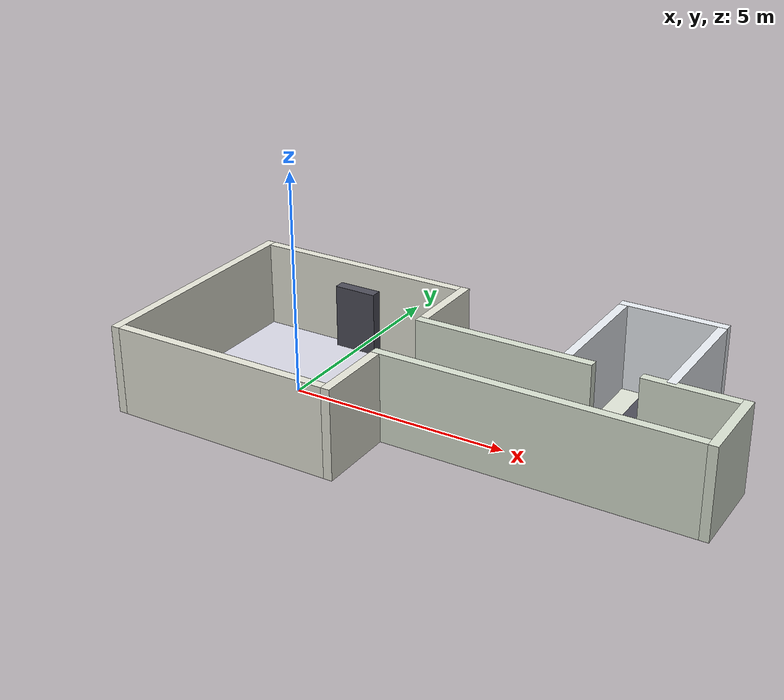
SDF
<?xml version="1.0" ?>
<sdf version="1.8">
  <world name="MechTech_to_MECE">

    <!-- Physics settings -->

      <!-- ODE-specific parameters for indoor robot simulation -->

    <!-- Physics settings -->
    <physics name="1ms" type="ignored">
      <max_step_size>0.005</max_step_size>
      <real_time_factor>1.0</real_time_factor>
    </physics>

    <!-- Essential Plugins - UNCOMMENTED -->
    <plugin
      filename="gz-sim-physics-system"
      name="gz::sim::systems::Physics">
    </plugin>

    <plugin
      filename="gz-sim-user-commands-system"
      name="gz::sim::systems::UserCommands">
    </plugin>

    <plugin
      filename="gz-sim-scene-broadcaster-system"
      name="gz::sim::systems::SceneBroadcaster">
    </plugin>

    <!-- Camera and LiDAR Plugins -->
    <plugin
      filename="gz-sim-sensors-system"
      name="gz::sim::systems::Sensors">
      <render_engine>ogre2</render_engine>
    </plugin>

    <!-- IMU plugin -->
    <plugin
      filename="gz-sim-imu-system"
      name="gz::sim::systems::Imu">
    </plugin>

    <!-- Enhanced Lighting -->
    <light type="directional" name="sun">
      <cast_shadows>true</cast_shadows>
      <pose>0 0 10 0 0 0</pose>
      <diffuse>0.8 0.8 0.8 1</diffuse>
      <specular>0.3 0.3 0.3 1</specular>
      <attenuation>
        <range>1000</range>
        <constant>0.9</constant>
        <linear>0.01</linear>
        <quadratic>0.001</quadratic>
      </attenuation>
      <direction>-0.5 0.1 -0.9</direction>
    </light>

    <light type="point" name="lobby_light">
      <pose>0 0 2.5 0 0 0</pose>
      <diffuse>0.7 0.7 0.8 1</diffuse>
      <specular>0.1 0.1 0.1 1</specular>
      <attenuation>
        <range>8</range>
        <constant>0.3</constant>
        <linear>0.05</linear>
        <quadratic>0.01</quadratic>
      </attenuation>
    </light>

    <light type="point" name="hallway_light">
      <pose>6 0 2.5 0 0 0</pose>
      <diffuse>0.7 0.7 0.8 1</diffuse>
      <specular>0.1 0.1 0.1 1</specular>
      <attenuation>
        <range>8</range>
        <constant>0.3</constant>
        <linear>0.05</linear>
        <quadratic>0.01</quadratic>
      </attenuation>
    </light>

    <light type="point" name="lab_light">
      <pose>7.0 2.25 2.5 0 0 0</pose>
      <diffuse>0.7 0.7 0.8 1</diffuse>
      <specular>0.1 0.1 0.1 1</specular>
      <attenuation>
        <range>8</range>
        <constant>0.3</constant>
        <linear>0.05</linear>
        <quadratic>0.01</quadratic>
      </attenuation>
    </light>
    <!-- ==================== LOBBY (5x5m) ==================== -->
    <model name="lobby_ground">
      <pose>0 0 0.01 0 0 0</pose>
      <static>true</static>
      <link name="link">
        <visual name="visual">
          <geometry>
            <box>
              <size>5.0 5.0 0.02</size>
            </box>
          </geometry>
          <material>
            <ambient>0.85 0.85 0.9 1</ambient>
            <diffuse>0.85 0.85 0.9 1</diffuse>
            <specular>0.3 0.3 0.3 1</specular>
          </material>
        </visual>
        <collision name="collision">
          <geometry>
            <box>
              <size>5.0 5.0 0.02</size>
            </box>
          </geometry>
        </collision>
      </link>
    </model>

    <model name="lobby_wall_north">
      <pose>0 2.6 1.0 0 0 0</pose>
      <static>true</static>
      <link name="link">
        <visual name="visual">
          <geometry>
            <box>
              <size>5.0 0.2 2.0</size>
            </box>
          </geometry>
          <material>
            <ambient>0.9 0.9 0.85 1</ambient>
            <diffuse>0.9 0.9 0.85 1</diffuse>
            <specular>0.1 0.1 0.1 1</specular>
          </material>
        </visual>
        <collision name="collision">
          <geometry>
            <box>
              <size>5.0 0.2 2.0</size>
            </box>
          </geometry>
        </collision>
      </link>
    </model>

    <model name="lobby_wall_south">
      <pose>0 -2.6 1.0 0 0 0</pose>
      <static>true</static>
      <link name="link">
        <visual name="visual">
          <geometry>
            <box>
              <size>5.0 0.2 2.0</size>
            </box>
          </geometry>
          <material>
            <ambient>0.9 0.9 0.85 1</ambient>
            <diffuse>0.9 0.9 0.85 1</diffuse>
            <specular>0.1 0.1 0.1 1</specular>
          </material>
        </visual>
        <collision name="collision">
          <geometry>
            <box>
              <size>5.0 0.2 2.0</size>
            </box>
          </geometry>
        </collision>
      </link>
    </model>

    <model name="lobby_wall_west">
      <pose>-2.6 0 1.0 0 0 0</pose>
      <static>true</static>
      <link name="link">
        <visual name="visual">
          <geometry>
            <box>
              <size>0.2 5.4 2.0</size>
            </box>
          </geometry>
          <material>
            <ambient>0.9 0.9 0.85 1</ambient>
            <diffuse>0.9 0.9 0.85 1</diffuse>
            <specular>0.1 0.1 0.1 1</specular>
          </material>
        </visual>
        <collision name="collision">
          <geometry>
            <box>
              <size>0.2 5.4 2.0</size>
            </box>
          </geometry>
        </collision>
      </link>
    </model>

    <model name="lobby_wall_northeast">
      <pose>2.6 1.825 1.0 0 0 0</pose>
      <static>true</static>
      <link name="link">
        <visual name="visual">
          <geometry>
            <box>
              <size>0.2 1.75 2.0</size>
            </box>
          </geometry>
          <material>
            <ambient>0.9 0.9 0.85 1</ambient>
            <diffuse>0.9 0.9 0.85 1</diffuse>
            <specular>0.1 0.1 0.1 1</specular>
          </material>
        </visual>
        <collision name="collision">
          <geometry>
            <box>
              <size>0.2 1.75 2.0</size>
            </box>
          </geometry>
        </collision>
      </link>
    </model>

    <model name="lobby_wall_southeast">
      <pose>2.6 -1.825 1.0 0 0 0</pose>
      <static>true</static>
      <link name="link">
        <visual name="visual">
          <geometry>
            <box>
              <size>0.2 1.75 2.0</size>
            </box>
          </geometry>
          <material>
            <ambient>0.9 0.9 0.85 1</ambient>
            <diffuse>0.9 0.9 0.85 1</diffuse>
            <specular>0.1 0.1 0.1 1</specular>
          </material>
        </visual>
        <collision name="collision">
          <geometry>
            <box>
              <size>0.2 1.75 2.0</size>
            </box>
          </geometry>
        </collision>
      </link>
    </model>

    <!-- ==================== HALLWAY ==================== -->
    <model name="hallway_ground">
      <pose>6.0 0 0.01 0 0 0</pose>
      <static>true</static>
      <link name="link">
        <visual name="visual">
          <geometry>
            <box>
              <size>7.0 1.5 0.02</size>
            </box>
          </geometry>
          <material>
            <ambient>0.8 0.82 0.85 1</ambient>
            <diffuse>0.8 0.82 0.85 1</diffuse>
            <specular>0.4 0.4 0.4 1</specular>
          </material>
        </visual>
        <collision name="collision">
          <geometry>
            <box>
              <size>7.0 1.5 0.02</size>
            </box>
          </geometry>
        </collision>
      </link>
    </model>

    <model name="hallway_wall_southwest">
      <pose>4.5 0.85 1.0 0 0 0</pose>
      <static>true</static>
      <link name="link">
        <visual name="visual">
          <geometry>
            <box>
              <size>4.0 0.2 2.0</size>
            </box>
          </geometry>
          <material>
            <ambient>0.85 0.88 0.82 1</ambient>
            <diffuse>0.85 0.88 0.82 1</diffuse>
            <specular>0.1 0.1 0.1 1</specular>
          </material>
        </visual>
        <collision name="collision">
          <geometry>
            <box>
              <size>4.0 0.2 2.0</size>
            </box>
          </geometry>
        </collision>
      </link>
    </model>

    <model name="hallway_wall_northwest">
      <pose>8.5 0.85 1.0 0 0 0</pose>
      <static>true</static>
      <link name="link">
        <visual name="visual">
          <geometry>
            <box>
              <size>2.0 0.2 2.0</size>
            </box>
          </geometry>
          <material>
            <ambient>0.85 0.88 0.82 1</ambient>
            <diffuse>0.85 0.88 0.82 1</diffuse>
            <specular>0.1 0.1 0.1 1</specular>
          </material>
        </visual>
        <collision name="collision">
          <geometry>
            <box>
              <size>2.0 0.2 2.0</size>
            </box>
          </geometry>
        </collision>
      </link>
    </model>

    <model name="hallway_wall_south">
      <pose>6.0 -0.85 1.0 0 0 0</pose>
      <static>true</static>
      <link name="link">
        <visual name="visual">
          <geometry>
            <box>
              <size>7.0 0.2 2.0</size>
            </box>
          </geometry>
          <material>
            <ambient>0.85 0.88 0.82 1</ambient>
            <diffuse>0.85 0.88 0.82 1</diffuse>
            <specular>0.1 0.1 0.1 1</specular>
          </material>
        </visual>
        <collision name="collision">
          <geometry>
            <box>
              <size>7.0 0.2 2.0</size>
            </box>
          </geometry>
        </collision>
      </link>
    </model>

    <model name="hallway_wall_east">
      <pose>9.6 0 1.0 0 0 0</pose>
      <static>true</static>
      <link name="link">
        <visual name="visual">
          <geometry>
            <box>
              <size>0.2 1.9 2.0</size>
            </box>
          </geometry>
          <material>
            <ambient>0.85 0.88 0.82 1</ambient>
            <diffuse>0.85 0.88 0.82 1</diffuse>
            <specular>0.1 0.1 0.1 1</specular>
          </material>
        </visual>
        <collision name="collision">
          <geometry>
            <box>
              <size>0.2 1.9 2.0</size>
            </box>
          </geometry>
        </collision>
      </link>
    </model>

    <!-- ==================== MechTech ==================== -->
    <model name="lab_ground">
      <pose>7.0 2.25 0.01 0 0 0</pose>
      <static>true</static>
      <link name="link">
        <visual name="visual">
          <geometry>
            <box>
              <size>2.0 3.0 0.02</size>
            </box>
          </geometry>
          <material>
            <ambient>0.88 0.9 0.85 1</ambient>
            <diffuse>0.88 0.9 0.85 1</diffuse>
            <specular>0.5 0.5 0.5 1</specular>
          </material>
        </visual>
        <collision name="collision">
          <geometry>
            <box>
              <size>2.0 3.0 0.02</size>
            </box>
          </geometry>
        </collision>
      </link>
    </model>

    <model name="lab_wall_north">
      <pose>7.0 3.75 1.0 0 0 0</pose>
      <static>true</static>
      <link name="link">
        <visual name="visual">
          <geometry>
            <box>
              <size>2.4 0.2 2.0</size>
            </box>
          </geometry>
          <material>
            <ambient>0.92 0.94 0.96 1</ambient>
            <diffuse>0.92 0.94 0.96 1</diffuse>
            <specular>0.2 0.2 0.2 1</specular>
          </material>
        </visual>
        <collision name="collision">
          <geometry>
            <box>
              <size>2.4 0.2 2.0</size>
            </box>
          </geometry>
        </collision>
      </link>
    </model>

    <model name="lab_wall_west">
      <pose>5.9 2.25 1.0 0 0 0</pose>
      <static>true</static>
      <link name="link">
        <visual name="visual">
          <geometry>
            <box>
              <size>0.2 2.8 2.0</size>
            </box>
          </geometry>
          <material>
            <ambient>0.92 0.94 0.96 1</ambient>
            <diffuse>0.92 0.94 0.96 1</diffuse>
            <specular>0.2 0.2 0.2 1</specular>
          </material>
        </visual>
        <collision name="collision">
          <geometry>
            <box>
              <size>0.2 2.8 2.0</size>
            </box>
          </geometry>
        </collision>
      </link>
    </model>

    <model name="lab_wall_east">
      <pose>8.1 2.25 1.0 0 0 0</pose>
      <static>true</static>
      <link name="link">
        <visual name="visual">
          <geometry>
            <box>
              <size>0.2 2.8 2.0</size>
            </box>
          </geometry>
          <material>
            <ambient>0.92 0.94 0.96 1</ambient>
            <diffuse>0.92 0.94 0.96 1</diffuse>
            <specular>0.2 0.2 0.2 1</specular>
          </material>
        </visual>
        <collision name="collision">
          <geometry>
            <box>
              <size>0.2 2.8 2.0</size>
            </box>
          </geometry>
        </collision>
      </link>
    </model>

    <model name="lab_table">
      <pose>7.0 2.25 0.2505 0 0 0</pose>
      <static>true</static>
      <link name="link">
        <visual name="visual">
          <geometry>
            <box>
              <size>0.4 1.2 0.5</size>
            </box>
          </geometry>
          <material>
            <ambient>0.3 0.3 0.35 1</ambient>
            <diffuse>0.3 0.3 0.35 1</diffuse>
            <specular>0.1 0.1 0.1 1</specular>
          </material>
        </visual>
        <collision name="collision">
          <geometry>
            <box>
             <size>0.4 1.2 0.5</size>
            </box>
          </geometry>
        </collision>
      </link>
    </model>

    <model name="table1">
      <pose>1.5 -1.75 0.25 0 0 0</pose>
      <static>true</static>
      <link name="link">
        <visual name="visual">
          <geometry>
            <cylinder>
              <radius>0.5</radius>
              <length>0.5</length>
            </cylinder>
          </geometry>
          <material>
            <ambient>0.3 0.3 0.35 1</ambient>
            <diffuse>0.3 0.3 0.35 1</diffuse>
            <specular>0.1 0.1 0.1 1</specular>
          </material>
        </visual>
        <collision name="collision">
          <geometry>
            <cylinder>
              <radius>0.5</radius>
              <length>0.5</length>
            </cylinder>
          </geometry>
        </collision>
      </link>
    </model>

    <model name="table2">
      <pose>0 -1.75 0.25 0 0 0</pose>
      <static>true</static>
      <link name="link">
        <visual name="visual">
          <geometry>
            <cylinder>
              <radius>0.5</radius>
              <length>0.5</length>
            </cylinder>
          </geometry>
          <material>
            <ambient>0.3 0.3 0.35 1</ambient>
            <diffuse>0.3 0.3 0.35 1</diffuse>
            <specular>0.1 0.1 0.1 1</specular>
          </material>
        </visual>
        <collision name="collision">
          <geometry>
            <cylinder>
              <radius>0.5</radius>
              <length>0.5</length>
            </cylinder>
          </geometry>
        </collision>
      </link>
    </model>

    <model name="table3">
      <pose>-1.5 -1.75 0.25 0 0 0</pose>
      <static>true</static>
      <link name="link">
        <visual name="visual">
          <geometry>
            <cylinder>
              <radius>0.5</radius>
              <length>0.5</length>
            </cylinder>
          </geometry>
          <material>
            <ambient>0.3 0.3 0.35 1</ambient>
            <diffuse>0.3 0.3 0.35 1</diffuse>
            <specular>0.1 0.1 0.1 1</specular>
          </material>
        </visual>
        <collision name="collision">
          <geometry>
            <cylinder>
              <radius>0.5</radius>
              <length>0.5</length>
            </cylinder>
          </geometry>
        </collision>
      </link>
    </model>

    <model name="elevator">
      <pose>0 2.4 0.75 0 0 0</pose>
      <static>true</static>
      <link name="link">
        <visual name="visual">
          <geometry>
            <box>
              <size>1.0 0.3 1.5</size>
            </box>
          </geometry>
          <material>
            <ambient>0.3 0.3 0.35 1</ambient>
            <diffuse>0.3 0.3 0.35 1</diffuse>
            <specular>0.1 0.1 0.1 1</specular>
          </material>
        </visual>
        <collision name="collision">
          <geometry>
            <box>
             <size>1.0 0.3 1.5</size>
            </box>
          </geometry>
        </collision>
      </link>
    </model>

  </world>
</sdf>
